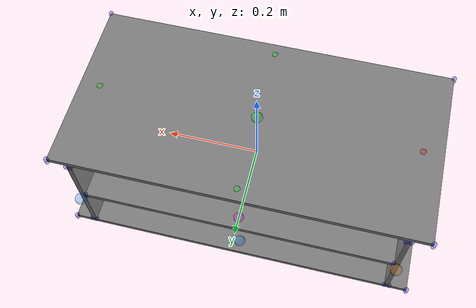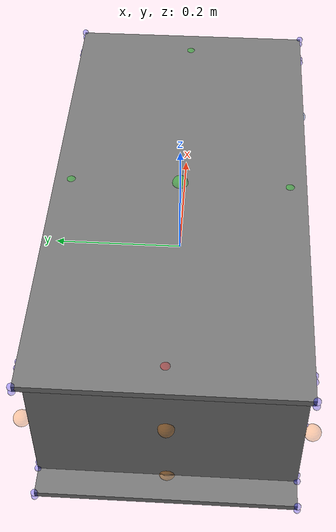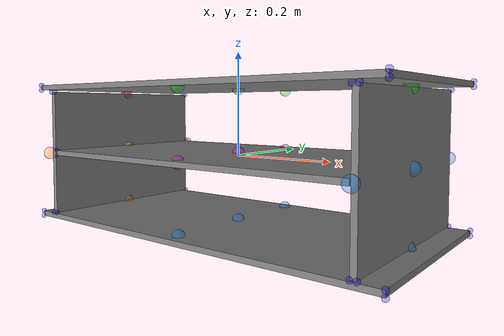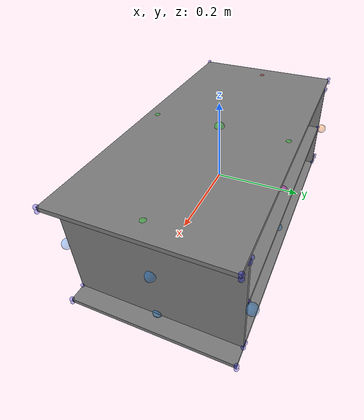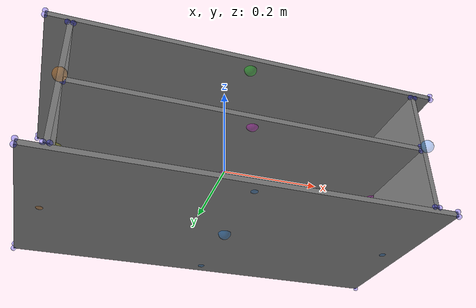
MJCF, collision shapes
<mujoco model="tvunit_0406">
    <asset>
        <mesh file="tvunit_0406/botplane.stl" name="botplane" scale="0.001 0.001 0.001" />
        <mesh file="tvunit_0406/midplane.stl" name="midplane" scale="0.001 0.001 0.001" />
        <mesh file="tvunit_0406/sideplane1.stl" name="sideplane1" scale="0.001 0.001 0.001" />
        <mesh file="tvunit_0406/sideplane2.stl" name="sideplane2" scale="0.001 0.001 0.001" />
        <mesh file="tvunit_0406/topplane.stl" name="topplane" scale="0.001 0.001 0.001" />
        <texture file="../textures/light-wood.png" name="tex-light-wood" type="2d" />
        <material name="pencil-wood" reflectance="0.5" texrepeat="20 20" texture="tex-light-wood" texuniform="true" />
    </asset>
    <equality>
        <weld active="false" body1="botplane" body2="sideplane1" solimp="1 1 0.5" solref="0.01 0.3" />
        <weld active="false" body1="botplane" body2="sideplane2" solimp="1 1 0.5" solref="0.01 0.3" />
        <weld active="false" body1="midplane" body2="sideplane1" solimp="1 1 0.5" solref="0.01 0.3" />
        <weld active="false" body1="midplane" body2="sideplane2" solimp="1 1 0.5" solref="0.01 0.3" />
        <weld active="false" body1="topplane" body2="sideplane1" solimp="1 1 0.5" solref="0.01 0.3" />
        <weld active="false" body1="topplane" body2="sideplane2" solimp="1 1 0.5" solref="0.01 0.3" />
    </equality>
    <worldbody>
        <body name="0_part0" pos="0.0 0.0 -0.132">
            <geom density="0" material="pencil-wood" mesh="botplane" name="botplane_geom" pos="0 0 0" rgba="0.82 0.71 0.55 1" solref="0.001 1" type="mesh" contype="0" conaffinity="0" />
             <geom density="100" name="noviz_collision_botplane_geom" pos="0 0 0" size="0.38 0.19 0.005" solref="0.001 1" type="box" />
            <site name="botplane_top_site" pos="0.0 0.0 0.005" rgba="0 0 1 0" size="0.005" />
            <site name="botplane_bottom_site" pos="0.0 0.0 -0.005" rgba="0 0 1 0" size="0.005" />
            <site name="botplane_horizontal_radius_site" pos="0.0 0.0 0.0" rgba="0 0 1 0" size="0.05" />
            <site name="botplane-sideplane1,0,conn_site" pos="-0.3375 0.0 0.005" rgba="1 0.5 0 0.3" size="0.012" />
            <site name="botplane-sideplane2,0,conn_site" pos="0.3375 0.0 0.005" rgba="0 0.5 1 0.3" size="0.012" />
            <site name="botplane-sideplane3,0,conn_site_fake1" pos="0.0 0.165 0.005" rgba="0 0.5 1 0.3" size="0.012" />
            <site name="botplane-sideplane4,0,conn_site_fake2" pos="0.0 -0.165 0.005" rgba="0 0.5 1 0.3" size="0.012" />
            <site name="botplane-sideplane5,0,conn_site_fake3" pos="0.0 0.0 0.005" rgba="0 0.5 1 0.3" size="0.012" />
            <site name="botplane-sideplane6,0,conn_site_fake4" pos="0.0 0.0 -0.005" rgba="0 0.5 1 0.3" size="0.012" />
            <site name="botplane_corner_site1" pos="-0.38 -0.19 -0.005" rgba="0 0 1 0.3" size="0.005" />
            <site name="botplane_corner_site2" pos="-0.38 0.19 -0.005" rgba="0 0 1 0.3" size="0.005" />
            <site name="botplane_corner_site3" pos="-0.38 -0.19 0.005" rgba="0 0 1 0.3" size="0.005" />
            <site name="botplane_corner_site4" pos="-0.38 0.19 0.005" rgba="0 0 1 0.3" size="0.005" />
            <site name="botplane_corner_site5" pos="0.38 -0.19 -0.005" rgba="0 0 1 0.3" size="0.005" />
            <site name="botplane_corner_site6" pos="0.38 0.19 -0.005" rgba="0 0 1 0.3" size="0.005" />
            <site name="botplane_corner_site7" pos="0.38 -0.19 0.005" rgba="0 0 1 0.3" size="0.005" />
            <site name="botplane_corner_site8" pos="0.38 0.19 0.005" rgba="0 0 1 0.3" size="0.005" />
        </body>
        <body name="1_part1" pos="0.0 0.0 0.0">
            <geom density="0" material="pencil-wood" mesh="midplane" name="midplane_geom" pos="0 0 0" rgba="0.82 0.71 0.55 1" solref="0.001 1" type="mesh" contype="0" conaffinity="0" />
            <geom density="100" name="noviz_collision_midplane_geom" pos="0 0 0"  solref="0.001 1" type="box" size="0.33 0.19 0.005" />
            <site name="midplane_top_site" pos="0.0 0.0 0.005" rgba="0 0 1 0" size="0.005" />
            <site name="midplane_bottom_site" pos="0.0 0.0 -0.005" rgba="0 0 1 0" size="0.005" />
            <site name="midplane_horizontal_radius_site" pos="0.0 0.0 0.0" rgba="0 0 1 0" size="0.05" />
            <site name="midplane-sideplane1,0,180,conn_site" pos="-0.331 0.0 0.0" quat="0.707 0 -0.707 0" rgba="1 1 0 0.3" size="0.012" />
            <site name="midplane-sideplane2,0,180,conn_site" pos="0.331 0.0 0.0" quat="0.707 0 -0.707 0" rgba="1 0 1 0.3" size="0.012" />
            <site name="midplane-sideplane3,0,180,conn_site_fake1" pos="0.0 0.165 0.0" quat="0.707 0 -0.707 0" rgba="1 0 1 0.3" size="0.012" />
            <site name="midplane-sideplane4,0,180,conn_site_fake2" pos="0.0 -0.165 0.0" quat="0.707 0 -0.707 0" rgba="1 0 1 0.3" size="0.012" />
            <site name="midplane-sideplane5,0,180,conn_site_fake3" pos="0.0 0.0 0.005" quat="0.707 0 -0.707 0" rgba="1 0 1 0.3" size="0.012" />
            <site name="midplane-sideplane6,0,180,conn_site_fake4" pos="0.0 0.0 -0.005" quat="0.707 0 -0.707 0" rgba="1 0 1 0.3" size="0.012" />
            <site name="midplane_corner_site1" pos="-0.33 -0.19 -0.005" rgba="0 0 1 0.3" size="0.005" />
            <site name="midplane_corner_site2" pos="-0.33 0.19 -0.005" rgba="0 0 1 0.3" size="0.005" />
            <site name="midplane_corner_site3" pos="-0.33 -0.19 0.005" rgba="0 0 1 0.3" size="0.005" />
            <site name="midplane_corner_site4" pos="-0.33 0.19 0.005" rgba="0 0 1 0.3" size="0.005" />
            <site name="midplane_corner_site5" pos="0.33 -0.19 -0.005" rgba="0 0 1 0.3" size="0.005" />
            <site name="midplane_corner_site6" pos="0.33 0.19 -0.005" rgba="0 0 1 0.3" size="0.005" />
            <site name="midplane_corner_site7" pos="0.33 -0.19 0.005" rgba="0 0 1 0.3" size="0.005" />
            <site name="midplane_corner_site8" pos="0.33 0.19 0.005" rgba="0 0 1 0.3" size="0.005" />
        </body>
        <body name="2_part2" pos="-0.336 0.0 0.0">
            <geom density="0" material="pencil-wood" mesh="sideplane1" name="sideplane1_geom" pos="0 0 0" rgba="0.82 0.71 0.55 1" solref="0.001 1" type="mesh" contype="0" conaffinity="0" />
            <geom density="100" name="noviz_collision_sideplane1_geom" pos="0 0 0" size="0.005  0.19  0.125" solref="0.001 1" type="box" />
            <site name="sideplane1_top_site" pos="0.0 0.0 0.13" rgba="0 0 1 0" size="0.005" />
            <site name="sideplane1_bottom_site" pos="0.0 0.0 -0.13" rgba="0 0 1 0" size="0.005" />
            <site name="sideplane1_horizontal_radius_site" pos="0.0 0.0 0.0" rgba="0 0 1 0" size="0.05" />
            <site name="sideplane1-topplane,0,conn_site" pos="0.0 0.0 0.125" rgba="1 0 0 0.3" size="0.012" />
            <site name="sideplane1-midplane,0,180,conn_site" pos="0.006 0.0 0.0" quat="0.707 0 -0.707 0" rgba="1 1 0 0.3" size="0.012" />
            <site name="sideplane1-botplane,0,conn_site" pos="0.0 0.0 -0.125" rgba="1 0.5 0 0.3" size="0.012" />
            <site name="sideplane1-botplane2,0,conn_site_fake1" pos="-0.006 0.0 0.0" rgba="1 0.5 0 0.3" size="0.012" />
            <site name="sideplane1-botplane3,0,conn_site_fake2" pos="0.0 0.200 0.0" rgba="1 0.5 0 0.3" size="0.012" />
            <site name="sideplane1-botplane4,0,conn_site_fake3" pos="0.0 -0.200 0.0" rgba="1 0.5 0 0.3" size="0.012" />

            <site name="sideplane1_corner_site1" pos="0.005 0.19 -0.125" rgba="0 0 1 0.3" size="0.005" />
            <site name="sideplane1_corner_site2" pos="0.005 -0.19 -0.125" rgba="0 0 1 0.3" size="0.005" />
            <site name="sideplane1_corner_site3" pos="0.005 0.19 0.125" rgba="0 0 1 0.3" size="0.005" />
            <site name="sideplane1_corner_site4" pos="0.005 -0.19 0.125" rgba="0 0 1 0.3" size="0.005" />
            <site name="sideplane1_corner_site5" pos="-0.005 0.19 -0.125" rgba="0 0 1 0.3" size="0.005" />
            <site name="sideplane1_corner_site6" pos="-0.005 -0.19 -0.125" rgba="0 0 1 0.3" size="0.005" />
            <site name="sideplane1_corner_site7" pos="-0.005 0.19 0.125" rgba="0 0 1 0.3" size="0.005" />
            <site name="sideplane1_corner_site8" pos="-0.005 -0.19 0.125" rgba="0 0 1 0.3" size="0.005" />
        </body>
        <body name="3_part3" pos="0.3372 0.0 0.0">
            <geom density="0" material="pencil-wood" mesh="sideplane2" name="sideplane2_geom" pos="0 0 0" rgba="0.82 0.71 0.55 1" solref="0.001 1" type="mesh" contype="0" conaffinity="0" />
            <geom density="100" name="noviz_collision_sideplane2_geom" pos="0 0 0" size="0.005  0.19  0.125" solref="0.001 1" type="box" />
            <site name="sideplane2_top_site" pos="0.0 0.0 0.13" rgba="0 0 1 0" size="0.005" />
            <site name="sideplane2_bottom_site" pos="0.0 0.0 -0.13" rgba="0 0 1 0" size="0.005" />
            <site name="sideplane2_horizontal_radius_site" pos="0.0 0.0 0.0" rgba="0 0 1 0" size="0.05" />
            <site name="sideplane2-topplane,0,conn_site" pos="0.0 0.0 0.125" rgba="0 1 0 0.3" size="0.012" />
            <site name="sideplane2-midplane,0,180,conn_site" pos="-0.006 0.0 0.0" quat="0.707 0 -0.707 0" rgba="1 0 1 0.3" size="0.012" />
            <site name="sideplane2-botplane,0,conn_site" pos="0.0 0.0 -0.125" rgba="0 0.5 1 0.3" size="0.012" />
            <site name="sideplane2-botplane2,0,conn_site_fake1" pos="0.0 0.200 0.0" rgba="0 0.5 1 0.3" size="0.012" />
            <site name="sideplane2-botplane3,0,conn_site_fake2" pos="0.0 -0.200 0.0" rgba="0 0.5 1 0.3" size="0.012" />
            <site name="sideplane2-botplane4,0,conn_site_fake3" pos="0.006 0.0 0.0" rgba="0 0.5 1 0.3" size="0.012" />

            <site name="sideplane2_corner_site1" pos="0.005 0.19 -0.125" rgba="0 0 1 0.3" size="0.005" />
            <site name="sideplane2_corner_site2" pos="0.005 -0.19 -0.125" rgba="0 0 1 0.3" size="0.005" />
            <site name="sideplane2_corner_site3" pos="0.005 0.19 0.125" rgba="0 0 1 0.3" size="0.005" />
            <site name="sideplane2_corner_site4" pos="0.005 -0.19 0.125" rgba="0 0 1 0.3" size="0.005" />
            <site name="sideplane2_corner_site5" pos="-0.005 0.19 -0.125" rgba="0 0 1 0.3" size="0.005" />
            <site name="sideplane2_corner_site6" pos="-0.005 -0.19 -0.125" rgba="0 0 1 0.3" size="0.005" />
            <site name="sideplane2_corner_site7" pos="-0.005 0.19 0.125" rgba="0 0 1 0.3" size="0.005" />
            <site name="sideplane2_corner_site8" pos="-0.005 -0.19 0.125" rgba="0 0 1 0.3" size="0.005" />
        </body>
        <body name="4_part4" pos="0.0 0.0 0.1348">
            <geom density="0" material="pencil-wood" mesh="topplane" name="topplane_geom" pos="0 0 0" rgba="0.82 0.71 0.55 1" solref="0.001 1" type="mesh" contype="0" conaffinity="0" />
            <geom density="100" name="noviz_collision_topplane_geom" pos="0 0 0" size="0.38  0.19  0.005 " solref="0.001 1" type="box" />
            <site name="topplane_top_site" pos="0.0 0.0 0.005" rgba="0 0 1 0" size="0.005" />
            <site name="topplane_bottom_site" pos="0.0 0.0 -0.005" rgba="0 0 1 0" size="0.005" />
            <site name="topplane_horizontal_radius_site" pos="0.0 0.0 0.0" rgba="0 0 1 0" size="0.05" />
            <site name="topplane-sideplane1,0,conn_site" pos="-0.3375 0.0 -0.005" rgba="1 0 0 0.3" size="0.012" />
            <site name="topplane-sideplane2,0,conn_site" pos="0.3375 0.0 -0.005" rgba="0 1 0 0.3" size="0.012" />
            <site name="topplane-sideplane3,0,conn_site_fake1" pos="0.0 0.165 -0.005" rgba="0 1 0 0.3" size="0.012" />
            <site name="topplane-sideplane4,0,conn_site_fake2" pos="0.0 -0.165 -0.005" rgba="0 1 0 0.3" size="0.012" />
            <site name="topplane-sideplane5,0,conn_site_fake3" pos="0.0 0.0 -0.005" rgba="0 1 0 0.3" size="0.012" />
            <site name="topplane-sideplane6,0,conn_site_fake4" pos="0.0 0.0 0.005" rgba="0 1 0 0.3" size="0.012" />
            <site name="topplane_corner_site1" pos="-0.38 -0.19 -0.005" rgba="0 0 1 0.3" size="0.005" />
            <site name="topplane_corner_site2" pos="-0.38 0.19 -0.005" rgba="0 0 1 0.3" size="0.005" />
            <site name="topplane_corner_site3" pos="-0.38 -0.19 0.005" rgba="0 0 1 0.3" size="0.005" />
            <site name="topplane_corner_site4" pos="-0.38 0.19 0.005" rgba="0 0 1 0.3" size="0.005" />
            <site name="topplane_corner_site5" pos="0.38 -0.19 -0.005" rgba="0 0 1 0.3" size="0.005" />
            <site name="topplane_corner_site6" pos="0.38 0.19 -0.005" rgba="0 0 1 0.3" size="0.005" />
            <site name="topplane_corner_site7" pos="0.38 -0.19 0.005" rgba="0 0 1 0.3" size="0.005" />
            <site name="topplane_corner_site8" pos="0.38 0.19 0.005" rgba="0 0 1 0.3" size="0.005" />
        </body>
    </worldbody>
</mujoco>
